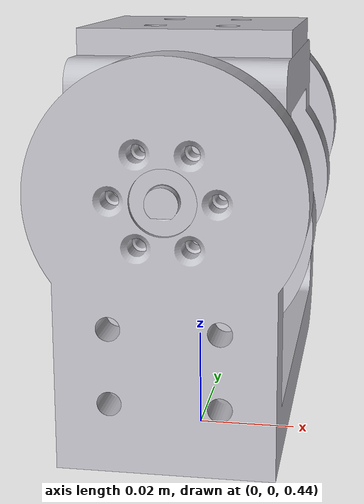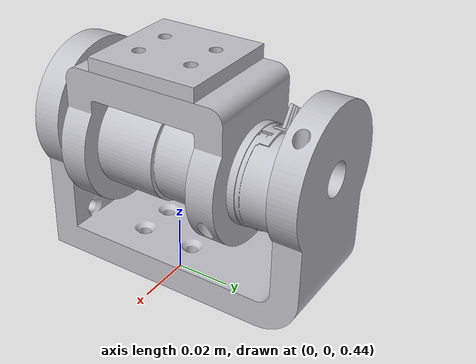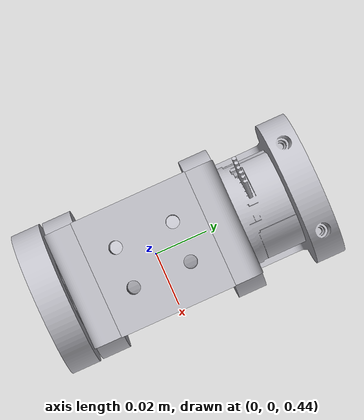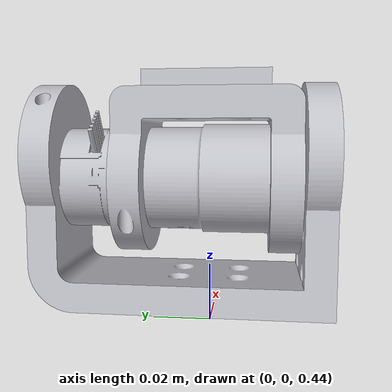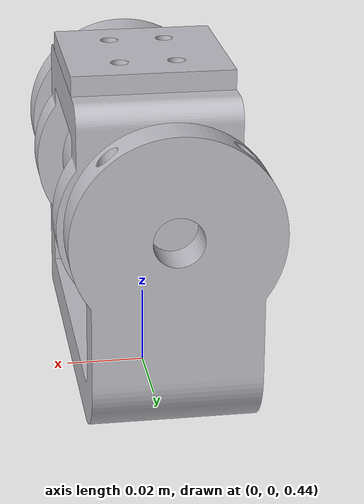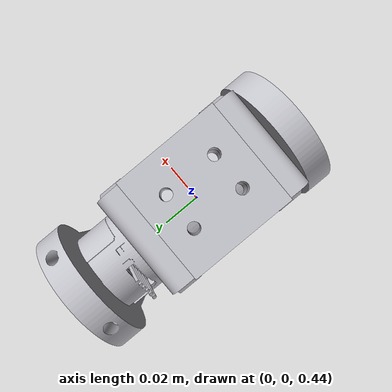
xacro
<?xml version="1.0" ?>
<robot name="robotleg_1_1" xmlns:xacro="http://www.ros.org/wiki/xacro">

<xacro:include filename="$(find robotleg_1_1_description)/urdf/materials.xacro" />
<xacro:include filename="$(find robotleg_1_1_description)/urdf/robotleg_1_1.trans" />
<xacro:include filename="$(find robotleg_1_1_description)/urdf/robotleg_1_1.gazebo" />
<link name="base_link">
  <inertial>
    <origin rpy="0 0 0" xyz="-9.73978003016387e-15 0.0 0.5225"/>
    <mass value="0.060303022889018544"/>
    <inertia ixx="8e-06" ixy="0.0" ixz="0.0" iyy="8e-06" iyz="-0.0" izz="1.6e-05"/>
  </inertial>
  <visual>
    <origin rpy="0 0 0" xyz="0 0 0"/>
    <geometry>
      <mesh filename="package://robotleg_1_1_description/meshes/base_link.stl" scale="0.001 0.001 0.001"/>
    </geometry>
    <material name="silver_default"/>
  </visual>
  <collision>
    <origin rpy="0 0 0" xyz="0 0 0"/>
    <geometry>
      <mesh filename="package://robotleg_1_1_description/meshes/base_link.stl" scale="0.001 0.001 0.001"/>
    </geometry>
  </collision>
</link>

<link name="joint_lower_1">
  <inertial>
    <origin rpy="0 0 0" xyz="-0.007000000000005211 0.005782222659981278 -0.019178043963505642"/>
    <mass value="0.051804524029768935"/>
    <inertia ixx="3.8e-05" ixy="-0.0" ixz="-0.0" iyy="2.3e-05" iyz="-3e-06" izz="3.3e-05"/>
  </inertial>
  <visual>
    <origin rpy="0 0 0" xyz="-0.007 0.01 -0.52"/>
    <geometry>
      <mesh filename="package://robotleg_1_1_description/meshes/joint_lower_1.stl" scale="0.001 0.001 0.001"/>
    </geometry>
    <material name="silver_default"/>
  </visual>
  <collision>
    <origin rpy="0 0 0" xyz="-0.007 0.01 -0.52"/>
    <geometry>
      <mesh filename="package://robotleg_1_1_description/meshes/joint_lower_1.stl" scale="0.001 0.001 0.001"/>
    </geometry>
  </collision>
</link>

<link name="motor_1">
  <inertial>
    <origin rpy="0 0 0" xyz="-0.007777568889405511 0.05850714205997138 -0.5032233357444531"/>
    <mass value="0.459091742069044"/>
    <inertia ixx="0.00019" ixy="0.0" ixz="0.0" iyy="7.2e-05" iyz="2e-06" izz="0.00019"/>
  </inertial>
  <visual>
    <origin rpy="0 0 0" xyz="-0.00775 0.05 -0.993423"/>
    <geometry>
      <mesh filename="package://robotleg_1_1_description/meshes/motor_1.stl" scale="0.001 0.001 0.001"/>
    </geometry>
    <material name="silver_default"/>
  </visual>
  <collision>
    <origin rpy="0 0 0" xyz="-0.00775 0.05 -0.993423"/>
    <geometry>
      <mesh filename="package://robotleg_1_1_description/meshes/motor_1.stl" scale="0.001 0.001 0.001"/>
    </geometry>
  </collision>
</link>

<link name="joint_1">
  <inertial>
    <origin rpy="0 0 0" xyz="-0.019923558879193445 0.46315480536145676 -0.03481870209136767"/>
    <mass value="0.0197994934350134"/>
    <inertia ixx="1e-06" ixy="0.0" ixz="0.0" iyy="2e-06" iyz="0.0" izz="1e-06"/>
  </inertial>
  <visual>
    <origin rpy="0 0 0" xyz="-0.019925 0.497075 -0.532"/>
    <geometry>
      <mesh filename="package://robotleg_1_1_description/meshes/joint_1.stl" scale="0.001 0.001 0.001"/>
    </geometry>
    <material name="silver_default"/>
  </visual>
  <collision>
    <origin rpy="0 0 0" xyz="-0.019925 0.497075 -0.532"/>
    <geometry>
      <mesh filename="package://robotleg_1_1_description/meshes/joint_1.stl" scale="0.001 0.001 0.001"/>
    </geometry>
  </collision>
</link>

<link name="joint_upper_1">
  <inertial>
    <origin rpy="0 0 0" xyz="0.02203650001368313 0.5475125487887875 -0.05331163228581265"/>
    <mass value="0.6663346958643348"/>
    <inertia ixx="0.001306" ixy="-0.0" ixz="-0.0" iyy="0.000437" iyz="-2.2e-05" izz="0.001073"/>
  </inertial>
  <visual>
    <origin rpy="0 0 0" xyz="0.022024 0.538549 -0.525622"/>
    <geometry>
      <mesh filename="package://robotleg_1_1_description/meshes/joint_upper_1.stl" scale="0.001 0.001 0.001"/>
    </geometry>
    <material name="silver_default"/>
  </visual>
  <collision>
    <origin rpy="0 0 0" xyz="0.022024 0.538549 -0.525622"/>
    <geometry>
      <mesh filename="package://robotleg_1_1_description/meshes/joint_upper_1.stl" scale="0.001 0.001 0.001"/>
    </geometry>
  </collision>
</link>

<joint name="Rigid12" type="fixed">
  <origin rpy="0 0 0" xyz="0.007 -0.01 0.52"/>
  <parent link="base_link"/>
  <child link="joint_lower_1"/>
</joint>

<joint name="Rigid13" type="fixed">
  <origin rpy="0 0 0" xyz="0.00075 -0.04 0.473423"/>
  <parent link="joint_lower_1"/>
  <child link="motor_1"/>
</joint>

<joint name="Rev14" type="continuous">
  <origin rpy="0 0 0" xyz="0.012175 -0.447075 -0.461423"/>
  <parent link="motor_1"/>
  <child link="joint_1"/>
  <axis xyz="0.0 -1.0 0.0"/>
</joint>

<joint name="Rigid15" type="fixed">
  <origin rpy="0 0 0" xyz="-0.041949 -0.041474 -0.006378"/>
  <parent link="joint_1"/>
  <child link="joint_upper_1"/>
</joint>

</robot>

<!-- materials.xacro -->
<robot name="robotleg_1_1" xmlns:xacro="http://www.ros.org/wiki/xacro" >

<material name="silver">
  <color rgba="0.700 0.700 0.700 1.000"/>
</material>

</robot>

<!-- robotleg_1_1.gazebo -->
<robot name="robotleg_1_1" xmlns:xacro="http://www.ros.org/wiki/xacro" >

<xacro:property name="body_color" value="Gazebo/Silver" />

<gazebo>
  <plugin filename="libgazebo_ros_control.so" name="control"/>
</gazebo>
<gazebo reference="base_link">
  <material>${body_color}</material>
  <mu1>0.2</mu1>
  <mu2>0.2</mu2>
  <selfCollide>true</selfCollide>
  <gravity>true</gravity>
</gazebo>

<gazebo reference="joint_lower_1">
  <material>${body_color}</material>
  <mu1>0.2</mu1>
  <mu2>0.2</mu2>
  <selfCollide>true</selfCollide>
</gazebo>

<gazebo reference="motor_1">
  <material>${body_color}</material>
  <mu1>0.2</mu1>
  <mu2>0.2</mu2>
  <selfCollide>true</selfCollide>
</gazebo>

<gazebo reference="encoder_cap_1">
  <material>${body_color}</material>
  <mu1>0.2</mu1>
  <mu2>0.2</mu2>
  <selfCollide>true</selfCollide>
</gazebo>

<gazebo reference="joint_1">
  <material>${body_color}</material>
  <mu1>0.2</mu1>
  <mu2>0.2</mu2>
  <selfCollide>true</selfCollide>
</gazebo>

<gazebo reference="joint_upper_1">
  <material>${body_color}</material>
  <mu1>0.2</mu1>
  <mu2>0.2</mu2>
  <selfCollide>true</selfCollide>
</gazebo>

<gazebo reference="link1_1">
  <material>${body_color}</material>
  <mu1>0.2</mu1>
  <mu2>0.2</mu2>
  <selfCollide>true</selfCollide>
</gazebo>

</robot>
